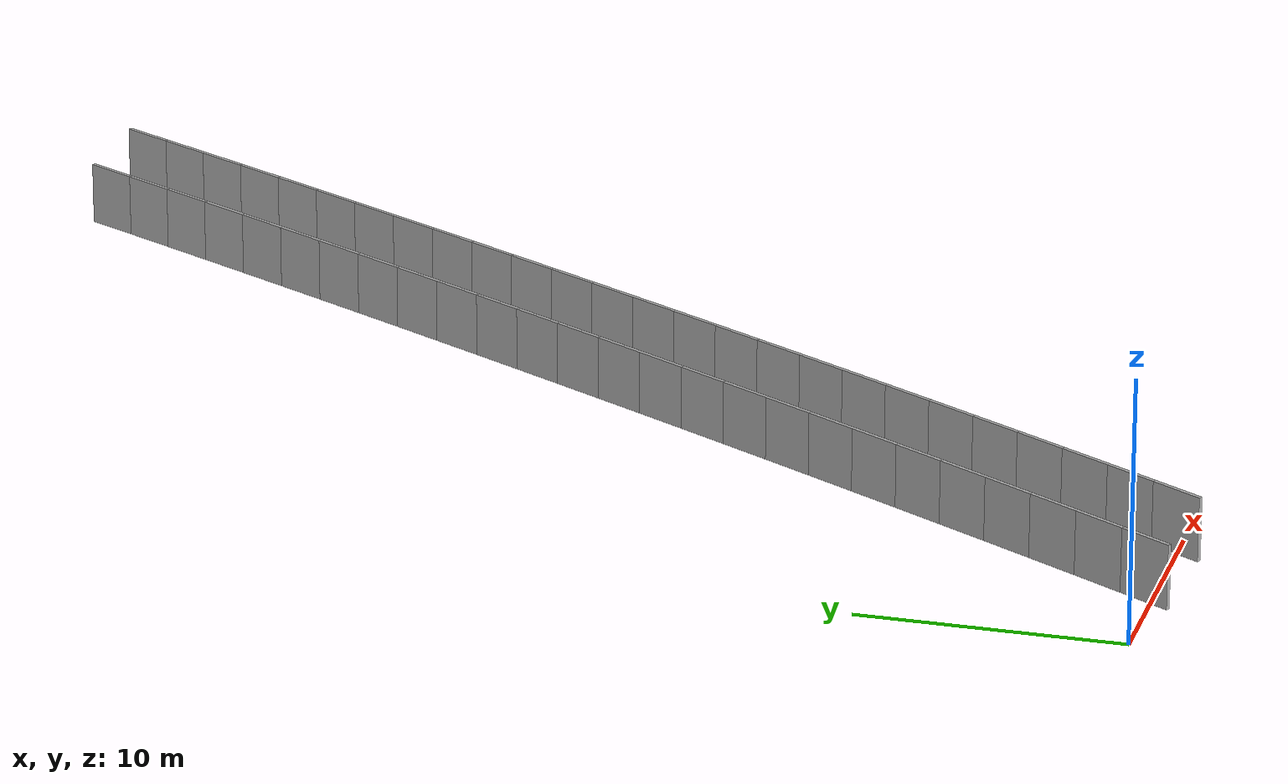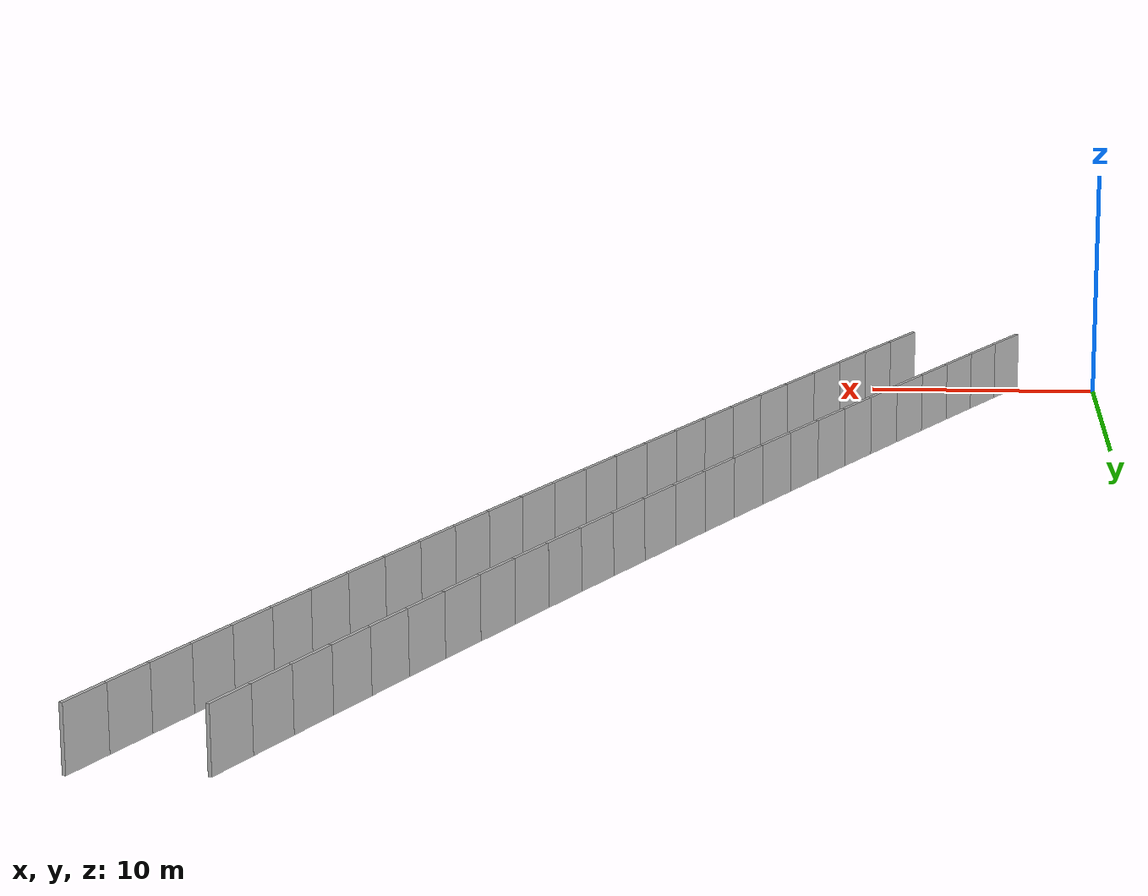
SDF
<?xml version="1.0" ?>
<sdf version="1.6">
  <model name="sps_4415">
    <pose frame="">0 0 0 0 -0 0</pose>
    <static>1</static>
    <self_collide>0</self_collide>
    <allow_auto_disable>0</allow_auto_disable>
    <link name="Wall4321">
      <kinematic>0</kinematic>
      <gravity>1</gravity>
      <self_collide>0</self_collide>
      <collision name="collision">
        <geometry>
          <box>
            <size>2.25437 0.15 2.5</size>
          </box>
        </geometry>
        <pose frame="">0 0 0 0 -0 0</pose>
      </collision>
      <visual name="visual">
        <geometry>
          <box>
            <size>2.25437 0.15 2.5</size>
          </box>
        </geometry>
        <pose frame="">0 0 0 0 -0 0</pose>
        <cast_shadows>1</cast_shadows>
        <transparency>0.0</transparency>
      </visual>
      <pose frame="">8.76415 0.0584859 1.25 0 -0 1.03354</pose>
    </link>
    <link name="Wall4322">
      <kinematic>0</kinematic>
      <gravity>1</gravity>
      <self_collide>0</self_collide>
      <collision name="collision">
        <geometry>
          <box>
            <size>2.25463 0.15 2.5</size>
          </box>
        </geometry>
        <pose frame="">0 0 0 0 -0 0</pose>
      </collision>
      <visual name="visual">
        <geometry>
          <box>
            <size>2.25463 0.15 2.5</size>
          </box>
        </geometry>
        <pose frame="">0 0 0 0 -0 0</pose>
        <cast_shadows>1</cast_shadows>
        <transparency>0.0</transparency>
      </visual>
      <pose frame="">9.91573 1.99669 1.25 0 -0 1.03584</pose>
    </link>
    <link name="Wall4323">
      <kinematic>0</kinematic>
      <gravity>1</gravity>
      <self_collide>0</self_collide>
      <collision name="collision">
        <geometry>
          <box>
            <size>2.25482 0.15 2.5</size>
          </box>
        </geometry>
        <pose frame="">0 0 0 0 -0 0</pose>
      </collision>
      <visual name="visual">
        <geometry>
          <box>
            <size>2.25482 0.15 2.5</size>
          </box>
        </geometry>
        <pose frame="">0 0 0 0 -0 0</pose>
        <cast_shadows>1</cast_shadows>
        <transparency>0.0</transparency>
      </visual>
      <pose frame="">11.0629 3.93779 1.25 0 -0 1.03825</pose>
    </link>
    <link name="Wall4324">
      <kinematic>0</kinematic>
      <gravity>1</gravity>
      <self_collide>0</self_collide>
      <collision name="collision">
        <geometry>
          <box>
            <size>2.25383 0.15 2.5</size>
          </box>
        </geometry>
        <pose frame="">0 0 0 0 -0 0</pose>
      </collision>
      <visual name="visual">
        <geometry>
          <box>
            <size>2.25383 0.15 2.5</size>
          </box>
        </geometry>
        <pose frame="">0 0 0 0 -0 0</pose>
        <cast_shadows>1</cast_shadows>
        <transparency>0.0</transparency>
      </visual>
      <pose frame="">12.2052 5.88127 1.25 0 -0 1.0406</pose>
    </link>
    <link name="Wall4325">
      <kinematic>0</kinematic>
      <gravity>1</gravity>
      <self_collide>0</self_collide>
      <collision name="collision">
        <geometry>
          <box>
            <size>2.25475 0.15 2.5</size>
          </box>
        </geometry>
        <pose frame="">0 0 0 0 -0 0</pose>
      </collision>
      <visual name="visual">
        <geometry>
          <box>
            <size>2.25475 0.15 2.5</size>
          </box>
        </geometry>
        <pose frame="">0 0 0 0 -0 0</pose>
        <cast_shadows>1</cast_shadows>
        <transparency>0.0</transparency>
      </visual>
      <pose frame="">13.3428 7.82747 1.25 0 -0 1.04306</pose>
    </link>
    <link name="Wall4326">
      <kinematic>0</kinematic>
      <gravity>1</gravity>
      <self_collide>0</self_collide>
      <collision name="collision">
        <geometry>
          <box>
            <size>2.25478 0.15 2.5</size>
          </box>
        </geometry>
        <pose frame="">0 0 0 0 -0 0</pose>
      </collision>
      <visual name="visual">
        <geometry>
          <box>
            <size>2.25478 0.15 2.5</size>
          </box>
        </geometry>
        <pose frame="">0 0 0 0 -0 0</pose>
        <cast_shadows>1</cast_shadows>
        <transparency>0.0</transparency>
      </visual>
      <pose frame="">14.476 9.77678 1.25 0 -0 1.04536</pose>
    </link>
    <link name="Wall4327">
      <kinematic>0</kinematic>
      <gravity>1</gravity>
      <self_collide>0</self_collide>
      <collision name="collision">
        <geometry>
          <box>
            <size>2.25446 0.15 2.5</size>
          </box>
        </geometry>
        <pose frame="">0 0 0 0 -0 0</pose>
      </collision>
      <visual name="visual">
        <geometry>
          <box>
            <size>2.25446 0.15 2.5</size>
          </box>
        </geometry>
        <pose frame="">0 0 0 0 -0 0</pose>
        <cast_shadows>1</cast_shadows>
        <transparency>0.0</transparency>
      </visual>
      <pose frame="">15.6046 11.7286 1.25 0 -0 1.04771</pose>
    </link>
    <link name="Wall4328">
      <kinematic>0</kinematic>
      <gravity>1</gravity>
      <self_collide>0</self_collide>
      <collision name="collision">
        <geometry>
          <box>
            <size>2.25458 0.15 2.5</size>
          </box>
        </geometry>
        <pose frame="">0 0 0 0 -0 0</pose>
      </collision>
      <visual name="visual">
        <geometry>
          <box>
            <size>2.25458 0.15 2.5</size>
          </box>
        </geometry>
        <pose frame="">0 0 0 0 -0 0</pose>
        <cast_shadows>1</cast_shadows>
        <transparency>0.0</transparency>
      </visual>
      <pose frame="">16.7285 13.683 1.25 0 -0 1.05012</pose>
    </link>
    <link name="Wall4329">
      <kinematic>0</kinematic>
      <gravity>1</gravity>
      <self_collide>0</self_collide>
      <collision name="collision">
        <geometry>
          <box>
            <size>2.25453 0.15 2.5</size>
          </box>
        </geometry>
        <pose frame="">0 0 0 0 -0 0</pose>
      </collision>
      <visual name="visual">
        <geometry>
          <box>
            <size>2.25453 0.15 2.5</size>
          </box>
        </geometry>
        <pose frame="">0 0 0 0 -0 0</pose>
        <cast_shadows>1</cast_shadows>
        <transparency>0.0</transparency>
      </visual>
      <pose frame="">17.8478 15.6401 1.25 0 -0 1.05245</pose>
    </link>
    <link name="Wall4330">
      <kinematic>0</kinematic>
      <gravity>1</gravity>
      <self_collide>0</self_collide>
      <collision name="collision">
        <geometry>
          <box>
            <size>2.25489 0.15 2.5</size>
          </box>
        </geometry>
        <pose frame="">0 0 0 0 -0 0</pose>
      </collision>
      <visual name="visual">
        <geometry>
          <box>
            <size>2.25489 0.15 2.5</size>
          </box>
        </geometry>
        <pose frame="">0 0 0 0 -0 0</pose>
        <cast_shadows>1</cast_shadows>
        <transparency>0.0</transparency>
      </visual>
      <pose frame="">18.9625 17.6 1.25 0 -0 1.0549</pose>
    </link>
    <link name="Wall4331">
      <kinematic>0</kinematic>
      <gravity>1</gravity>
      <self_collide>0</self_collide>
      <collision name="collision">
        <geometry>
          <box>
            <size>2.25441 0.15 2.5</size>
          </box>
        </geometry>
        <pose frame="">0 0 0 0 -0 0</pose>
      </collision>
      <visual name="visual">
        <geometry>
          <box>
            <size>2.25441 0.15 2.5</size>
          </box>
        </geometry>
        <pose frame="">0 0 0 0 -0 0</pose>
        <cast_shadows>1</cast_shadows>
        <transparency>0.0</transparency>
      </visual>
      <pose frame="">20.0724 19.5625 1.25 0 -0 1.05721</pose>
    </link>
    <link name="Wall4332">
      <kinematic>0</kinematic>
      <gravity>1</gravity>
      <self_collide>0</self_collide>
      <collision name="collision">
        <geometry>
          <box>
            <size>2.25467 0.15 2.5</size>
          </box>
        </geometry>
        <pose frame="">0 0 0 0 -0 0</pose>
      </collision>
      <visual name="visual">
        <geometry>
          <box>
            <size>2.25467 0.15 2.5</size>
          </box>
        </geometry>
        <pose frame="">0 0 0 0 -0 0</pose>
        <cast_shadows>1</cast_shadows>
        <transparency>0.0</transparency>
      </visual>
      <pose frame="">21.1778 21.5275 1.25 0 -0 1.0596</pose>
    </link>
    <link name="Wall4333">
      <kinematic>0</kinematic>
      <gravity>1</gravity>
      <self_collide>0</self_collide>
      <collision name="collision">
        <geometry>
          <box>
            <size>2.2548 0.15 2.5</size>
          </box>
        </geometry>
        <pose frame="">0 0 0 0 -0 0</pose>
      </collision>
      <visual name="visual">
        <geometry>
          <box>
            <size>2.2548 0.15 2.5</size>
          </box>
        </geometry>
        <pose frame="">0 0 0 0 -0 0</pose>
        <cast_shadows>1</cast_shadows>
        <transparency>0.0</transparency>
      </visual>
      <pose frame="">22.2785 23.4953 1.25 0 -0 1.06199</pose>
    </link>
    <link name="Wall4334">
      <kinematic>0</kinematic>
      <gravity>1</gravity>
      <self_collide>0</self_collide>
      <collision name="collision">
        <geometry>
          <box>
            <size>2.2545 0.15 2.5</size>
          </box>
        </geometry>
        <pose frame="">0 0 0 0 -0 0</pose>
      </collision>
      <visual name="visual">
        <geometry>
          <box>
            <size>2.2545 0.15 2.5</size>
          </box>
        </geometry>
        <pose frame="">0 0 0 0 -0 0</pose>
        <cast_shadows>1</cast_shadows>
        <transparency>0.0</transparency>
      </visual>
      <pose frame="">23.3744 25.4657 1.25 0 -0 1.06446</pose>
    </link>
    <link name="Wall4335">
      <kinematic>0</kinematic>
      <gravity>1</gravity>
      <self_collide>0</self_collide>
      <collision name="collision">
        <geometry>
          <box>
            <size>2.25473 0.15 2.5</size>
          </box>
        </geometry>
        <pose frame="">0 0 0 0 -0 0</pose>
      </collision>
      <visual name="visual">
        <geometry>
          <box>
            <size>2.25473 0.15 2.5</size>
          </box>
        </geometry>
        <pose frame="">0 0 0 0 -0 0</pose>
        <cast_shadows>1</cast_shadows>
        <transparency>0.0</transparency>
      </visual>
      <pose frame="">24.4657 27.4386 1.25 0 -0 1.06662</pose>
    </link>
    <link name="Wall4336">
      <kinematic>0</kinematic>
      <gravity>1</gravity>
      <self_collide>0</self_collide>
      <collision name="collision">
        <geometry>
          <box>
            <size>2.25459 0.15 2.5</size>
          </box>
        </geometry>
        <pose frame="">0 0 0 0 -0 0</pose>
      </collision>
      <visual name="visual">
        <geometry>
          <box>
            <size>2.25459 0.15 2.5</size>
          </box>
        </geometry>
        <pose frame="">0 0 0 0 -0 0</pose>
        <cast_shadows>1</cast_shadows>
        <transparency>0.0</transparency>
      </visual>
      <pose frame="">25.5524 29.4141 1.25 0 -0 1.06915</pose>
    </link>
    <link name="Wall4337">
      <kinematic>0</kinematic>
      <gravity>1</gravity>
      <self_collide>0</self_collide>
      <collision name="collision">
        <geometry>
          <box>
            <size>2.2547 0.15 2.5</size>
          </box>
        </geometry>
        <pose frame="">0 0 0 0 -0 0</pose>
      </collision>
      <visual name="visual">
        <geometry>
          <box>
            <size>2.2547 0.15 2.5</size>
          </box>
        </geometry>
        <pose frame="">0 0 0 0 -0 0</pose>
        <cast_shadows>1</cast_shadows>
        <transparency>0.0</transparency>
      </visual>
      <pose frame="">26.6342 31.3922 1.25 0 -0 1.07149</pose>
    </link>
    <link name="Wall4338">
      <kinematic>0</kinematic>
      <gravity>1</gravity>
      <self_collide>0</self_collide>
      <collision name="collision">
        <geometry>
          <box>
            <size>2.25443 0.15 2.5</size>
          </box>
        </geometry>
        <pose frame="">0 0 0 0 -0 0</pose>
      </collision>
      <visual name="visual">
        <geometry>
          <box>
            <size>2.25443 0.15 2.5</size>
          </box>
        </geometry>
        <pose frame="">0 0 0 0 -0 0</pose>
        <cast_shadows>1</cast_shadows>
        <transparency>0.0</transparency>
      </visual>
      <pose frame="">27.7114 33.3728 1.25 0 -0 1.07392</pose>
    </link>
    <link name="Wall4339">
      <kinematic>0</kinematic>
      <gravity>1</gravity>
      <self_collide>0</self_collide>
      <collision name="collision">
        <geometry>
          <box>
            <size>2.25472 0.15 2.5</size>
          </box>
        </geometry>
        <pose frame="">0 0 0 0 -0 0</pose>
      </collision>
      <visual name="visual">
        <geometry>
          <box>
            <size>2.25472 0.15 2.5</size>
          </box>
        </geometry>
        <pose frame="">0 0 0 0 -0 0</pose>
        <cast_shadows>1</cast_shadows>
        <transparency>0.0</transparency>
      </visual>
      <pose frame="">28.7838 35.356 1.25 0 -0 1.07624</pose>
    </link>
    <link name="Wall4340">
      <kinematic>0</kinematic>
      <gravity>1</gravity>
      <self_collide>0</self_collide>
      <collision name="collision">
        <geometry>
          <box>
            <size>2.25487 0.15 2.5</size>
          </box>
        </geometry>
        <pose frame="">0 0 0 0 -0 0</pose>
      </collision>
      <visual name="visual">
        <geometry>
          <box>
            <size>2.25487 0.15 2.5</size>
          </box>
        </geometry>
        <pose frame="">0 0 0 0 -0 0</pose>
        <cast_shadows>1</cast_shadows>
        <transparency>0.0</transparency>
      </visual>
      <pose frame="">29.8517 37.3419 1.25 0 -0 1.07858</pose>
    </link>
    <link name="Wall4341">
      <kinematic>0</kinematic>
      <gravity>1</gravity>
      <self_collide>0</self_collide>
      <collision name="collision">
        <geometry>
          <box>
            <size>2.25405 0.15 2.5</size>
          </box>
        </geometry>
        <pose frame="">0 0 0 0 -0 0</pose>
      </collision>
      <visual name="visual">
        <geometry>
          <box>
            <size>2.25405 0.15 2.5</size>
          </box>
        </geometry>
        <pose frame="">0 0 0 0 -0 0</pose>
        <cast_shadows>1</cast_shadows>
        <transparency>0.0</transparency>
      </visual>
      <pose frame="">30.9145 39.3301 1.25 0 -0 1.08121</pose>
    </link>
    <link name="Wall4342">
      <kinematic>0</kinematic>
      <gravity>1</gravity>
      <self_collide>0</self_collide>
      <collision name="collision">
        <geometry>
          <box>
            <size>2.25453 0.15 2.5</size>
          </box>
        </geometry>
        <pose frame="">0 0 0 0 -0 0</pose>
      </collision>
      <visual name="visual">
        <geometry>
          <box>
            <size>2.25453 0.15 2.5</size>
          </box>
        </geometry>
        <pose frame="">0 0 0 0 -0 0</pose>
        <cast_shadows>1</cast_shadows>
        <transparency>0.0</transparency>
      </visual>
      <pose frame="">31.9725 41.3207 1.25 0 -0 1.08334</pose>
    </link>
    <link name="Wall4343">
      <kinematic>0</kinematic>
      <gravity>1</gravity>
      <self_collide>0</self_collide>
      <collision name="collision">
        <geometry>
          <box>
            <size>2.25477 0.15 2.5</size>
          </box>
        </geometry>
        <pose frame="">0 0 0 0 -0 0</pose>
      </collision>
      <visual name="visual">
        <geometry>
          <box>
            <size>2.25477 0.15 2.5</size>
          </box>
        </geometry>
        <pose frame="">0 0 0 0 -0 0</pose>
        <cast_shadows>1</cast_shadows>
        <transparency>0.0</transparency>
      </visual>
      <pose frame="">33.0261 43.314 1.25 0 -0 1.0857</pose>
    </link>
    <link name="Wall4344">
      <kinematic>0</kinematic>
      <gravity>1</gravity>
      <self_collide>0</self_collide>
      <collision name="collision">
        <geometry>
          <box>
            <size>2.25471 0.15 2.5</size>
          </box>
        </geometry>
        <pose frame="">0 0 0 0 -0 0</pose>
      </collision>
      <visual name="visual">
        <geometry>
          <box>
            <size>2.25471 0.15 2.5</size>
          </box>
        </geometry>
        <pose frame="">0 0 0 0 -0 0</pose>
        <cast_shadows>1</cast_shadows>
        <transparency>0.0</transparency>
      </visual>
      <pose frame="">34.075 45.3099 1.25 0 -0 1.08819</pose>
    </link>
    <link name="Wall4345">
      <kinematic>0</kinematic>
      <gravity>1</gravity>
      <self_collide>0</self_collide>
      <collision name="collision">
        <geometry>
          <box>
            <size>2.25445 0.15 2.5</size>
          </box>
        </geometry>
        <pose frame="">0 0 0 0 -0 0</pose>
      </collision>
      <visual name="visual">
        <geometry>
          <box>
            <size>2.25445 0.15 2.5</size>
          </box>
        </geometry>
        <pose frame="">0 0 0 0 -0 0</pose>
        <cast_shadows>1</cast_shadows>
        <transparency>0.0</transparency>
      </visual>
      <pose frame="">35.119 47.3082 1.25 0 -0 1.09051</pose>
    </link>
    <link name="Wall4346">
      <kinematic>0</kinematic>
      <gravity>1</gravity>
      <self_collide>0</self_collide>
      <collision name="collision">
        <geometry>
          <box>
            <size>2.2548 0.15 2.5</size>
          </box>
        </geometry>
        <pose frame="">0 0 0 0 -0 0</pose>
      </collision>
      <visual name="visual">
        <geometry>
          <box>
            <size>2.2548 0.15 2.5</size>
          </box>
        </geometry>
        <pose frame="">0 0 0 0 -0 0</pose>
        <cast_shadows>1</cast_shadows>
        <transparency>0.0</transparency>
      </visual>
      <pose frame="">36.1583 49.309 1.25 0 -0 1.09291</pose>
    </link>
    <link name="Wall6045">
      <kinematic>0</kinematic>
      <gravity>1</gravity>
      <self_collide>0</self_collide>
      <collision name="collision">
        <geometry>
          <box>
            <size>2.24469 0.15 2.5</size>
          </box>
        </geometry>
        <pose frame="">0 0 0 0 -0 0</pose>
      </collision>
      <visual name="visual">
        <geometry>
          <box>
            <size>2.24469 0.15 2.5</size>
          </box>
        </geometry>
        <pose frame="">0 0 0 0 -0 0</pose>
        <cast_shadows>1</cast_shadows>
        <transparency>0.0</transparency>
      </visual>
      <pose frame="">4.05666 0.250106 1.25 0 -0 1.03106</pose>
    </link>
    <link name="Wall6046">
      <kinematic>0</kinematic>
      <gravity>1</gravity>
      <self_collide>0</self_collide>
      <collision name="collision">
        <geometry>
          <box>
            <size>2.24491 0.15 2.5</size>
          </box>
        </geometry>
        <pose frame="">0 0 0 0 -0 0</pose>
      </collision>
      <visual name="visual">
        <geometry>
          <box>
            <size>2.24491 0.15 2.5</size>
          </box>
        </geometry>
        <pose frame="">0 0 0 0 -0 0</pose>
        <cast_shadows>1</cast_shadows>
        <transparency>0.0</transparency>
      </visual>
      <pose frame="">5.20794 2.1772 1.25 0 -0 1.0335</pose>
    </link>
    <link name="Wall6047">
      <kinematic>0</kinematic>
      <gravity>1</gravity>
      <self_collide>0</self_collide>
      <collision name="collision">
        <geometry>
          <box>
            <size>2.24536 0.15 2.5</size>
          </box>
        </geometry>
        <pose frame="">0 0 0 0 -0 0</pose>
      </collision>
      <visual name="visual">
        <geometry>
          <box>
            <size>2.24536 0.15 2.5</size>
          </box>
        </geometry>
        <pose frame="">0 0 0 0 -0 0</pose>
        <cast_shadows>1</cast_shadows>
        <transparency>0.0</transparency>
      </visual>
      <pose frame="">6.35485 4.10728 1.25 0 -0 1.03577</pose>
    </link>
    <link name="Wall6048">
      <kinematic>0</kinematic>
      <gravity>1</gravity>
      <self_collide>0</self_collide>
      <collision name="collision">
        <geometry>
          <box>
            <size>2.24405 0.15 2.5</size>
          </box>
        </geometry>
        <pose frame="">0 0 0 0 -0 0</pose>
      </collision>
      <visual name="visual">
        <geometry>
          <box>
            <size>2.24405 0.15 2.5</size>
          </box>
        </geometry>
        <pose frame="">0 0 0 0 -0 0</pose>
        <cast_shadows>1</cast_shadows>
        <transparency>0.0</transparency>
      </visual>
      <pose frame="">7.49685 6.03978 1.25 0 -0 1.03836</pose>
    </link>
    <link name="Wall6049">
      <kinematic>0</kinematic>
      <gravity>1</gravity>
      <self_collide>0</self_collide>
      <collision name="collision">
        <geometry>
          <box>
            <size>2.24468 0.15 2.5</size>
          </box>
        </geometry>
        <pose frame="">0 0 0 0 -0 0</pose>
      </collision>
      <visual name="visual">
        <geometry>
          <box>
            <size>2.24468 0.15 2.5</size>
          </box>
        </geometry>
        <pose frame="">0 0 0 0 -0 0</pose>
        <cast_shadows>1</cast_shadows>
        <transparency>0.0</transparency>
      </visual>
      <pose frame="">8.63393 7.97478 1.25 0 -0 1.04067</pose>
    </link>
    <link name="Wall6050">
      <kinematic>0</kinematic>
      <gravity>1</gravity>
      <self_collide>0</self_collide>
      <collision name="collision">
        <geometry>
          <box>
            <size>2.24482 0.15 2.5</size>
          </box>
        </geometry>
        <pose frame="">0 0 0 0 -0 0</pose>
      </collision>
      <visual name="visual">
        <geometry>
          <box>
            <size>2.24482 0.15 2.5</size>
          </box>
        </geometry>
        <pose frame="">0 0 0 0 -0 0</pose>
        <cast_shadows>1</cast_shadows>
        <transparency>0.0</transparency>
      </visual>
      <pose frame="">9.76684 9.91267 1.25 0 -0 1.04288</pose>
    </link>
    <link name="Wall6051">
      <kinematic>0</kinematic>
      <gravity>1</gravity>
      <self_collide>0</self_collide>
      <collision name="collision">
        <geometry>
          <box>
            <size>2.24486 0.15 2.5</size>
          </box>
        </geometry>
        <pose frame="">0 0 0 0 -0 0</pose>
      </collision>
      <visual name="visual">
        <geometry>
          <box>
            <size>2.24486 0.15 2.5</size>
          </box>
        </geometry>
        <pose frame="">0 0 0 0 -0 0</pose>
        <cast_shadows>1</cast_shadows>
        <transparency>0.0</transparency>
      </visual>
      <pose frame="">10.8953 11.8533 1.25 0 -0 1.04534</pose>
    </link>
    <link name="Wall6052">
      <kinematic>0</kinematic>
      <gravity>1</gravity>
      <self_collide>0</self_collide>
      <collision name="collision">
        <geometry>
          <box>
            <size>2.24476 0.15 2.5</size>
          </box>
        </geometry>
        <pose frame="">0 0 0 0 -0 0</pose>
      </collision>
      <visual name="visual">
        <geometry>
          <box>
            <size>2.24476 0.15 2.5</size>
          </box>
        </geometry>
        <pose frame="">0 0 0 0 -0 0</pose>
        <cast_shadows>1</cast_shadows>
        <transparency>0.0</transparency>
      </visual>
      <pose frame="">12.019 13.7966 1.25 0 -0 1.0477</pose>
    </link>
    <link name="Wall6053">
      <kinematic>0</kinematic>
      <gravity>1</gravity>
      <self_collide>0</self_collide>
      <collision name="collision">
        <geometry>
          <box>
            <size>2.24484 0.15 2.5</size>
          </box>
        </geometry>
        <pose frame="">0 0 0 0 -0 0</pose>
      </collision>
      <visual name="visual">
        <geometry>
          <box>
            <size>2.24484 0.15 2.5</size>
          </box>
        </geometry>
        <pose frame="">0 0 0 0 -0 0</pose>
        <cast_shadows>1</cast_shadows>
        <transparency>0.0</transparency>
      </visual>
      <pose frame="">13.138 15.7426 1.25 0 -0 1.0502</pose>
    </link>
    <link name="Wall6054">
      <kinematic>0</kinematic>
      <gravity>1</gravity>
      <self_collide>0</self_collide>
      <collision name="collision">
        <geometry>
          <box>
            <size>2.24483 0.15 2.5</size>
          </box>
        </geometry>
        <pose frame="">0 0 0 0 -0 0</pose>
      </collision>
      <visual name="visual">
        <geometry>
          <box>
            <size>2.24483 0.15 2.5</size>
          </box>
        </geometry>
        <pose frame="">0 0 0 0 -0 0</pose>
        <cast_shadows>1</cast_shadows>
        <transparency>0.0</transparency>
      </visual>
      <pose frame="">14.2523 17.6913 1.25 0 -0 1.05245</pose>
    </link>
    <link name="Wall6055">
      <kinematic>0</kinematic>
      <gravity>1</gravity>
      <self_collide>0</self_collide>
      <collision name="collision">
        <geometry>
          <box>
            <size>2.24481 0.15 2.5</size>
          </box>
        </geometry>
        <pose frame="">0 0 0 0 -0 0</pose>
      </collision>
      <visual name="visual">
        <geometry>
          <box>
            <size>2.24481 0.15 2.5</size>
          </box>
        </geometry>
        <pose frame="">0 0 0 0 -0 0</pose>
        <cast_shadows>1</cast_shadows>
        <transparency>0.0</transparency>
      </visual>
      <pose frame="">15.3621 19.6426 1.25 0 -0 1.05489</pose>
    </link>
    <link name="Wall6056">
      <kinematic>0</kinematic>
      <gravity>1</gravity>
      <self_collide>0</self_collide>
      <collision name="collision">
        <geometry>
          <box>
            <size>2.24476 0.15 2.5</size>
          </box>
        </geometry>
        <pose frame="">0 0 0 0 -0 0</pose>
      </collision>
      <visual name="visual">
        <geometry>
          <box>
            <size>2.24476 0.15 2.5</size>
          </box>
        </geometry>
        <pose frame="">0 0 0 0 -0 0</pose>
        <cast_shadows>1</cast_shadows>
        <transparency>0.0</transparency>
      </visual>
      <pose frame="">16.4672 21.5965 1.25 0 -0 1.05725</pose>
    </link>
    <link name="Wall6057">
      <kinematic>0</kinematic>
      <gravity>1</gravity>
      <self_collide>0</self_collide>
      <collision name="collision">
        <geometry>
          <box>
            <size>2.24475 0.15 2.5</size>
          </box>
        </geometry>
        <pose frame="">0 0 0 0 -0 0</pose>
      </collision>
      <visual name="visual">
        <geometry>
          <box>
            <size>2.24475 0.15 2.5</size>
          </box>
        </geometry>
        <pose frame="">0 0 0 0 -0 0</pose>
        <cast_shadows>1</cast_shadows>
        <transparency>0.0</transparency>
      </visual>
      <pose frame="">17.5677 23.553 1.25 0 -0 1.05959</pose>
    </link>
    <link name="Wall6058">
      <kinematic>0</kinematic>
      <gravity>1</gravity>
      <self_collide>0</self_collide>
      <collision name="collision">
        <geometry>
          <box>
            <size>2.24468 0.15 2.5</size>
          </box>
        </geometry>
        <pose frame="">0 0 0 0 -0 0</pose>
      </collision>
      <visual name="visual">
        <geometry>
          <box>
            <size>2.24468 0.15 2.5</size>
          </box>
        </geometry>
        <pose frame="">0 0 0 0 -0 0</pose>
        <cast_shadows>1</cast_shadows>
        <transparency>0.0</transparency>
      </visual>
      <pose frame="">18.6635 25.5121 1.25 0 -0 1.06203</pose>
    </link>
    <link name="Wall6059">
      <kinematic>0</kinematic>
      <gravity>1</gravity>
      <self_collide>0</self_collide>
      <collision name="collision">
        <geometry>
          <box>
            <size>2.24509 0.15 2.5</size>
          </box>
        </geometry>
        <pose frame="">0 0 0 0 -0 0</pose>
      </collision>
      <visual name="visual">
        <geometry>
          <box>
            <size>2.24509 0.15 2.5</size>
          </box>
        </geometry>
        <pose frame="">0 0 0 0 -0 0</pose>
        <cast_shadows>1</cast_shadows>
        <transparency>0.0</transparency>
      </visual>
      <pose frame="">19.7548 27.4739 1.25 0 -0 1.06434</pose>
    </link>
    <link name="Wall6060">
      <kinematic>0</kinematic>
      <gravity>1</gravity>
      <self_collide>0</self_collide>
      <collision name="collision">
        <geometry>
          <box>
            <size>2.24475 0.15 2.5</size>
          </box>
        </geometry>
        <pose frame="">0 0 0 0 -0 0</pose>
      </collision>
      <visual name="visual">
        <geometry>
          <box>
            <size>2.24475 0.15 2.5</size>
          </box>
        </geometry>
        <pose frame="">0 0 0 0 -0 0</pose>
        <cast_shadows>1</cast_shadows>
        <transparency>0.0</transparency>
      </visual>
      <pose frame="">20.8414 29.4383 1.25 0 -0 1.06674</pose>
    </link>
    <link name="Wall6061">
      <kinematic>0</kinematic>
      <gravity>1</gravity>
      <self_collide>0</self_collide>
      <collision name="collision">
        <geometry>
          <box>
            <size>2.24484 0.15 2.5</size>
          </box>
        </geometry>
        <pose frame="">0 0 0 0 -0 0</pose>
      </collision>
      <visual name="visual">
        <geometry>
          <box>
            <size>2.24484 0.15 2.5</size>
          </box>
        </geometry>
        <pose frame="">0 0 0 0 -0 0</pose>
        <cast_shadows>1</cast_shadows>
        <transparency>0.0</transparency>
      </visual>
      <pose frame="">21.9232 31.4052 1.25 0 -0 1.06909</pose>
    </link>
    <link name="Wall6062">
      <kinematic>0</kinematic>
      <gravity>1</gravity>
      <self_collide>0</self_collide>
      <collision name="collision">
        <geometry>
          <box>
            <size>2.24456 0.15 2.5</size>
          </box>
        </geometry>
        <pose frame="">0 0 0 0 -0 0</pose>
      </collision>
      <visual name="visual">
        <geometry>
          <box>
            <size>2.24456 0.15 2.5</size>
          </box>
        </geometry>
        <pose frame="">0 0 0 0 -0 0</pose>
        <cast_shadows>1</cast_shadows>
        <transparency>0.0</transparency>
      </visual>
      <pose frame="">23.0004 33.3746 1.25 0 -0 1.07153</pose>
    </link>
    <link name="Wall6063">
      <kinematic>0</kinematic>
      <gravity>1</gravity>
      <self_collide>0</self_collide>
      <collision name="collision">
        <geometry>
          <box>
            <size>2.2449 0.15 2.5</size>
          </box>
        </geometry>
        <pose frame="">0 0 0 0 -0 0</pose>
      </collision>
      <visual name="visual">
        <geometry>
          <box>
            <size>2.2449 0.15 2.5</size>
          </box>
        </geometry>
        <pose frame="">0 0 0 0 -0 0</pose>
        <cast_shadows>1</cast_shadows>
        <transparency>0.0</transparency>
      </visual>
      <pose frame="">24.0728 35.3466 1.25 0 -0 1.07388</pose>
    </link>
    <link name="Wall6064">
      <kinematic>0</kinematic>
      <gravity>1</gravity>
      <self_collide>0</self_collide>
      <collision name="collision">
        <geometry>
          <box>
            <size>2.24475 0.15 2.5</size>
          </box>
        </geometry>
        <pose frame="">0 0 0 0 -0 0</pose>
      </collision>
      <visual name="visual">
        <geometry>
          <box>
            <size>2.24475 0.15 2.5</size>
          </box>
        </geometry>
        <pose frame="">0 0 0 0 -0 0</pose>
        <cast_shadows>1</cast_shadows>
        <transparency>0.0</transparency>
      </visual>
      <pose frame="">25.1406 37.3212 1.25 0 -0 1.07628</pose>
    </link>
    <link name="Wall6065">
      <kinematic>0</kinematic>
      <gravity>1</gravity>
      <self_collide>0</self_collide>
      <collision name="collision">
        <geometry>
          <box>
            <size>2.24413 0.15 2.5</size>
          </box>
        </geometry>
        <pose frame="">0 0 0 0 -0 0</pose>
      </collision>
      <visual name="visual">
        <geometry>
          <box>
            <size>2.24413 0.15 2.5</size>
          </box>
        </geometry>
        <pose frame="">0 0 0 0 -0 0</pose>
        <cast_shadows>1</cast_shadows>
        <transparency>0.0</transparency>
      </visual>
      <pose frame="">26.2035 39.298 1.25 0 -0 1.07863</pose>
    </link>
    <link name="Wall6066">
      <kinematic>0</kinematic>
      <gravity>1</gravity>
      <self_collide>0</self_collide>
      <collision name="collision">
        <geometry>
          <box>
            <size>2.24488 0.15 2.5</size>
          </box>
        </geometry>
        <pose frame="">0 0 0 0 -0 0</pose>
      </collision>
      <visual name="visual">
        <geometry>
          <box>
            <size>2.24488 0.15 2.5</size>
          </box>
        </geometry>
        <pose frame="">0 0 0 0 -0 0</pose>
        <cast_shadows>1</cast_shadows>
        <transparency>0.0</transparency>
      </visual>
      <pose frame="">27.2616 41.2774 1.25 0 -0 1.08106</pose>
    </link>
    <link name="Wall6067">
      <kinematic>0</kinematic>
      <gravity>1</gravity>
      <self_collide>0</self_collide>
      <collision name="collision">
        <geometry>
          <box>
            <size>2.24491 0.15 2.5</size>
          </box>
        </geometry>
        <pose frame="">0 0 0 0 -0 0</pose>
      </collision>
      <visual name="visual">
        <geometry>
          <box>
            <size>2.24491 0.15 2.5</size>
          </box>
        </geometry>
        <pose frame="">0 0 0 0 -0 0</pose>
        <cast_shadows>1</cast_shadows>
        <transparency>0.0</transparency>
      </visual>
      <pose frame="">28.3152 43.2597 1.25 0 -0 1.08347</pose>
    </link>
    <link name="Wall6068">
      <kinematic>0</kinematic>
      <gravity>1</gravity>
      <self_collide>0</self_collide>
      <collision name="collision">
        <geometry>
          <box>
            <size>2.24473 0.15 2.5</size>
          </box>
        </geometry>
        <pose frame="">0 0 0 0 -0 0</pose>
      </collision>
      <visual name="visual">
        <geometry>
          <box>
            <size>2.24473 0.15 2.5</size>
          </box>
        </geometry>
        <pose frame="">0 0 0 0 -0 0</pose>
        <cast_shadows>1</cast_shadows>
        <transparency>0.0</transparency>
      </visual>
      <pose frame="">29.3643 45.2443 1.25 0 -0 1.08555</pose>
    </link>
    <link name="Wall6069">
      <kinematic>0</kinematic>
      <gravity>1</gravity>
      <self_collide>0</self_collide>
      <collision name="collision">
        <geometry>
          <box>
            <size>2.24488 0.15 2.5</size>
          </box>
        </geometry>
        <pose frame="">0 0 0 0 -0 0</pose>
      </collision>
      <visual name="visual">
        <geometry>
          <box>
            <size>2.24488 0.15 2.5</size>
          </box>
        </geometry>
        <pose frame="">0 0 0 0 -0 0</pose>
        <cast_shadows>1</cast_shadows>
        <transparency>0.0</transparency>
      </visual>
      <pose frame="">30.4088 47.2313 1.25 0 -0 1.08811</pose>
    </link>
    <link name="Wall6070">
      <kinematic>0</kinematic>
      <gravity>1</gravity>
      <self_collide>0</self_collide>
      <collision name="collision">
        <geometry>
          <box>
            <size>2.24492 0.15 2.5</size>
          </box>
        </geometry>
        <pose frame="">0 0 0 0 -0 0</pose>
      </collision>
      <visual name="visual">
        <geometry>
          <box>
            <size>2.24492 0.15 2.5</size>
          </box>
        </geometry>
        <pose frame="">0 0 0 0 -0 0</pose>
        <cast_shadows>1</cast_shadows>
        <transparency>0.0</transparency>
      </visual>
      <pose frame="">31.4484 49.221 1.25 0 -0 1.0906</pose>
    </link>
  </model>
</sdf>
